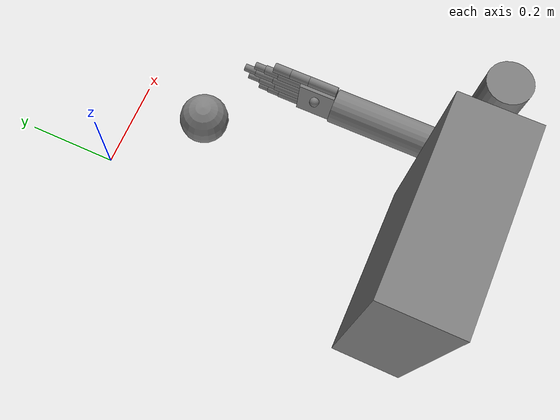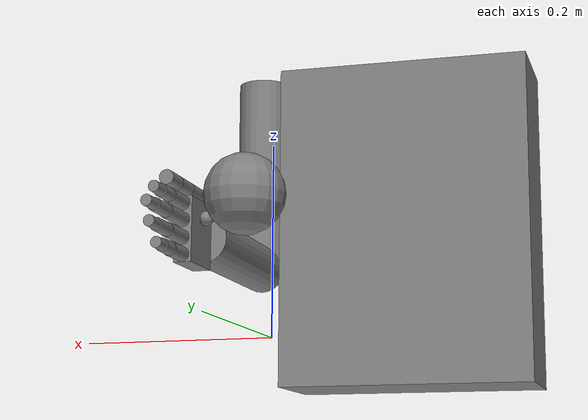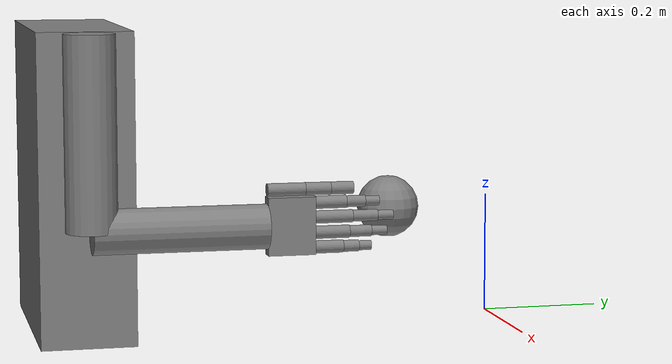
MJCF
<mujoco model="cosmo">
    <compiler angle="radian" inertiafromgeom="true"/>
    <option timestep="0.0002" iterations="50" apirate="50" gravity="0 0 -9.8"/>
    <size njmax="600" nconmax="150" nstack="300000"/>
    <default class="ALL">
      <geom contype="1" conaffinity="1" condim="3" margin="0.001"/>
      <joint limited="true" armature="0" solreflimit="0.0002 1" solimplimit="0.9 0.95 0.001"/>
    </default>
    <visual>
      <quality shadowsize="2048"/>
      <map fogstart="6" fogend="10"/>
      <headlight diffuse=".6 .6 .6" specular="0 0 0"/>
    </visual>
    <contact>
        <exclude body1="UPPERARM" body2="FOREARM"/>
        <exclude body1="FOREARM" body2="PALM"/>
        <exclude body1="PALM" body2="THUMB1"/>
        <exclude body1="PALM" body2="INDEX1"/>
        <exclude body1="PALM" body2="MIDDLE1"/>
        <exclude body1="PALM" body2="RING1"/>
        <exclude body1="PALM" body2="PINKY1"/>
        <exclude body1="THUMB1" body2="THUMB2"/>
        <exclude body1="INDEX1" body2="INDEX2"/>
        <exclude body1="MIDDLE1" body2="MIDDLE2"/>
        <exclude body1="RING1" body2="RING2"/>
        <exclude body1="PINKY1" body2="PINKY2"/>
        <exclude body1="THUMB2" body2="THUMB3"/>
        <exclude body1="INDEX2" body2="INDEX3"/>
        <exclude body1="MIDDLE2" body2="MIDDLE3"/>
        <exclude body1="RING2" body2="RING3"/>
        <exclude body1="PINKY2" body2="PINKY3"/>
        <!-- Start Exclude thumb from other fingers -->
        <exclude body1="THUMB1" body2="INDEX1"/>
        <exclude body1="THUMB1" body2="INDEX2"/>
        <exclude body1="THUMB1" body2="INDEX3"/>
        <exclude body1="THUMB2" body2="INDEX1"/>
        <exclude body1="THUMB2" body2="INDEX2"/>
        <exclude body1="THUMB2" body2="INDEX3"/>
        <exclude body1="THUMB3" body2="INDEX1"/>
        <exclude body1="THUMB3" body2="INDEX2"/>
        <exclude body1="THUMB3" body2="INDEX3"/>
        <exclude body1="THUMB1" body2="MIDDLE1"/>
        <exclude body1="THUMB1" body2="MIDDLE2"/>
        <exclude body1="THUMB1" body2="MIDDLE3"/>
        <exclude body1="THUMB2" body2="MIDDLE1"/>
        <exclude body1="THUMB2" body2="MIDDLE2"/>
        <exclude body1="THUMB2" body2="MIDDLE3"/>
        <exclude body1="THUMB3" body2="MIDDLE1"/>
        <exclude body1="THUMB3" body2="MIDDLE2"/>
        <exclude body1="THUMB3" body2="MIDDLE3"/>
        <exclude body1="THUMB1" body2="RING1"/>
        <exclude body1="THUMB1" body2="RING2"/>
        <exclude body1="THUMB1" body2="RING3"/>
        <exclude body1="THUMB2" body2="RING1"/>
        <exclude body1="THUMB2" body2="RING2"/>
        <exclude body1="THUMB2" body2="RING3"/>
        <exclude body1="THUMB3" body2="RING1"/>
        <exclude body1="THUMB3" body2="RING2"/>
        <exclude body1="THUMB3" body2="RING3"/>
        <exclude body1="THUMB1" body2="PINKY1"/>
        <exclude body1="THUMB1" body2="PINKY2"/>
        <exclude body1="THUMB1" body2="PINKY3"/>
        <exclude body1="THUMB2" body2="PINKY1"/>
        <exclude body1="THUMB2" body2="PINKY2"/>
        <exclude body1="THUMB2" body2="PINKY3"/>
        <exclude body1="THUMB3" body2="PINKY1"/>
        <exclude body1="THUMB3" body2="PINKY2"/>
        <exclude body1="THUMB3" body2="PINKY3"/>
        <!-- End Exclude thumb from other fingers -->
    </contact>
    <worldbody>
      <light directional="false" cutoff="35" exponent="10" diffuse=".7 .7 .7" pos="0.4 -0.2 1.5" dir="-0.4 0.2 -1.5" specular=".3 .3 .3"/>
      <camera name="fixed" pos="0 -0.7 0.7" zaxis="0 -1 1" fovy="45" ipd="0.068"/>
      <body childclass="ALL" name="T" pos="0 -0.7 0.25">
        <geom type="box" size="0.19 0.075 0.245" pos="0 0 0" mass= "38"/>
        <body name= "UPPERARM" pos="0.24 0 0.245">
          <geom type= "cylinder" fromto="0 0 0 0 0 -0.3" size="0.04" mass= "1.7"/>
          <joint name="T_UPPERARM_X" type="hinge" pos="0 0 0" axis="1 0 0" range="-3.14 3.14"/>
          <joint name="T_UPPERARM_Y" type="hinge" pos="0 0 0" axis="0 1 0" range="-3.14 3.14"/>
          <joint name="T_UPPERARM_Z" type="hinge" pos="0 0 0" axis="0 0 1" range="-3.14 3.14"/>
          <body name= "FOREARM" pos="0 0 -0.3" quat="0.7071 0.7071 0 0">
            <geom type= "cylinder" fromto="0 0 0 0 0 -0.27" size="0.035" mass= "1.3"/>
            <joint name= "UPPERARM_FOREARM" type="hinge" pos="0 0 0" axis="1 0 0" range="-1.5 1.5"/>
            <body name="PALM" pos="0 0 -0.3075" quat="0.7071 0 0 0.7071">
              <geom type="box" size="0.045 0.0125 0.0375" mass= "0.3148"/>
              <site name="palm_center" pos="0.02 0.02 0" size="0.01 0.01 0.01"/>
              <joint name="FOREARM_PALM_Z" type="hinge" pos="0 0 0.05" axis="0 0 1" range="-1.5708 1.5708" stiffness=".25" springref="0" damping="0.01"/>
              <joint name="FOREARM_PALM_Y" type="hinge" pos="0 0 0.05" axis="0 1 0" range="-0.5236 0.1745"/>
              <joint name="FOREARM_PALM_X" type="hinge" pos="0 0 0.05" axis="1 0 0" range="-1.2217 1.2217" stiffness=".5" springref="-.1571" damping="0.075"/>
              <!-- Fingers -->
              <!-- THUMB -->
              <body name= "THUMB1" pos="0.0565 0 0.0375" quat="0.7071 0 0 -0.7071">
                <geom type= "cylinder" fromto="0 0 0 0 0 -0.06" size="0.01" mass= "0.0650"/>
                <joint name="PALM_THUMB1_X" type="hinge" pos="0 0 0" axis="1 0 0" range="0 0.8727" stiffness=".5" springref=".646" damping="0.0142"/>
                <joint name="PALM_THUMB1_Y" type="hinge" pos="0 0 0" axis="0 1 0" range="0 0.8727" stiffness=".1" springref=".436" damping="0.0142"/>
                <body name= "THUMB2" pos="0 0 -0.06">
                  <geom type= "cylinder" fromto="0 0 0 0 0 -0.04" size="0.01" mass= "0.0193"/>
                  <joint name="THUMB1_THUMB2" type="hinge" pos="0 0 0" axis="1 0 0" range="-0.7854 0" stiffness=".1" springref="-.559" damping="0.0105"/>
                  <body name= "THUMB3" pos="0 0 -0.04">
                    <geom type= "cylinder" fromto="0 0 0 0 0 -0.036" size="0.01" mass= "0.0263"/>
                    <joint name="THUMB2_THUMB3" type="hinge" pos="0 0 0" axis="1 0 0" range="-1.5708 0" stiffness=".1" springref="-.279" damping="0.0081"/>
                  </body>
                </body>
              </body>
              <!-- INDEX -->
              <body name= "INDEX1" pos="0.035 0 -0.0375" quat="0.7071 0 0 -0.7071">
                <geom type= "cylinder" fromto="0 0 0 0 0 -0.05" size="0.01" mass= "0.0164"/>
                <joint name="PALM_INDEX1" type="hinge" pos="0 0 0" axis="0 1 0" range="0 1.5708" stiffness=".1" springref=".559" damping="0.0142"/>
                <body name= "INDEX2" pos="0 0 -0.05">
                  <geom type= "cylinder" fromto="0 0 0 0 0 -0.03" size="0.009" mass= "0.0168"/>
                  <joint name="INDEX1_INDEX2" type="hinge" pos="0 0 0" axis="0 1 0" range="0 2.0944" stiffness=".1" springref=".489" damping="0.0105"/>
                  <body name= "INDEX3" pos="0 0 -0.03">
                    <geom type= "cylinder" fromto="0 0 0 0 0 -0.0225" size="0.0075" mass= "0.0132"/>
                    <joint name="INDEX2_INDEX3" type="hinge" pos="0 0 0" axis="0 1 0" range="0 1.5708" stiffness=".1" springref=".384" damping="0.0081"/>
                  </body>
                </body>
              </body>
              <!-- MIDDLE -->
              <body name= "MIDDLE1" pos="0.012 0 -0.0375" quat="0.7071 0 0 -0.7071">
                <geom type= "cylinder" fromto="0 0 0 0 0 -0.06" size="0.01" mass= "0.0204"/>
                <joint name="PALM_MIDDLE1" type="hinge" pos="0 0 0" axis="0 1 0" range="0 1.5708" stiffness=".1" springref=".541" damping="0.0142"/>
                <body name= "MIDDLE2" pos="0 0 -0.06">
                  <geom type= "cylinder" fromto="0 0 0 0 0 -0.04" size="0.009" mass= "0.0168"/>
                  <joint name="MIDDLE1_MIDDLE2" type="hinge" pos="0 0 0" axis="0 1 0" range="0 2.0944" stiffness=".1" springref=".960" damping="0.0105"/>
                  <body name= "MIDDLE3" pos="0 0 -0.04">
                    <geom type= "cylinder" fromto="0 0 0 0 0 -0.025" size="0.0075" mass= "0.0120"/>
                    <joint name="MIDDLE2_MIDDLE3" type="hinge" pos="0 0 0" axis="0 1 0" range="0 1.5708" stiffness=".1" springref=".524" damping="0.0081"/>
                  </body>
                </body>
              </body>
              <!-- RING -->
              <body name= "RING1" pos="-0.012 0 -0.0375" quat="0.7071 0 0 -0.7071">
                <geom type= "cylinder" fromto="0 0 0 0 0 -0.055" size="0.01" mass= "0.0144"/>
                <joint name="PALM_RING1" type="hinge" pos="0 0 0" axis="0 1 0" range="0 1.5708" stiffness=".1" springref=".646" damping="0.0142"/>
                <body name= "RING2" pos="0 0 -0.055">
                  <geom type= "cylinder" fromto="0 0 0 0 0 -0.035" size="0.009" mass= "0.0109"/>
                  <joint name="RING1_RING2" type="hinge" pos="0 0 0" axis="0 1 0" range="0 2.0944" stiffness=".1" springref=".943" damping="0.0105"/>
                  <body name= "RING3" pos="0 0 -0.035">
                    <geom type= "cylinder" fromto="0 0 0 0 0 -0.025" size="0.0075" mass= "0.0094"/>
                    <joint name="RING2_RING3" type="hinge" pos="0 0 0" axis="0 1 0" range="0 1.5708" stiffness=".1" springref=".437" damping="0.0081"/>
                  </body>
                </body>
              </body>
              <!-- PINKY -->
              <body name= "PINKY1" pos="-0.035 0 -0.0375" quat="0.7071 0 0 -0.7071">
                <geom type= "cylinder" fromto="0 0 0 0 0 -0.045" size="0.01" mass= "0.0122"/>
                <joint name="PALM_PINKY1" type="hinge" pos="0 0 0" axis="0 1 0" range="0 1.5708" stiffness=".1" springref=".855" damping="0.0142"/>
                <body name= "PINKY2" pos="0 0 -0.045">
                  <geom type= "cylinder" fromto="0 0 0 0 0 -0.025" size="0.009" mass= "0.0074"/>
                  <joint name="PINKY1_PINKY2" type="hinge" pos="0 0 0" axis="0 1 0" range="0 2.0944" stiffness=".1" springref=".541" damping="0.0105"/>
                  <body name= "PINKY3" pos="0 0 -0.025">
                   <geom type= "cylinder" fromto="0 0 0 0 0 -0.02" size="0.0075" mass= "0.0068"/>
                   <joint name="PINKY2_PINKY3" type="hinge" pos="0 0 0" axis="0 1 0" range="0 1.5708" stiffness=".1" springref=".367" damping="0.0081"/>
                  </body>
                </body>
              </body>
            </body>
          </body>
        </body>
      </body>
      <body name="TARGET" pos="0.1 -0.2 0.2"> <!--pos="0.2 -0.2 0.25">-->
        <geom type="sphere" size="0.05" contype="1" conaffinity="1" condim="3" margin="0.001"/>
      </body>
    </worldbody>
    <actuator>
      <motor joint="T_UPPERARM_X" ctrlrange="-100.0 100.0" ctrllimited="true"/>
      <motor joint="T_UPPERARM_Y" ctrlrange="-100.0 100.0" ctrllimited="true"/>
      <motor joint="T_UPPERARM_Z" ctrlrange="-100.0 100.0" ctrllimited="true"/>
      <motor joint="UPPERARM_FOREARM" ctrlrange="-100.0 100.0" ctrllimited="true"/>
      <motor joint="FOREARM_PALM_X" ctrlrange="-100.0 100.0" ctrllimited="true"/>
      <motor joint="FOREARM_PALM_Y" ctrlrange="-100.0 100.0" ctrllimited="true"/>
      <motor joint="FOREARM_PALM_Z" ctrlrange="-100.0 100.0" ctrllimited="true"/>
      <motor joint="PALM_THUMB1_X" ctrlrange="-100.0 100.0" ctrllimited="true"/>
      <motor joint="PALM_THUMB1_Y" ctrlrange="-100.0 100.0" ctrllimited="true"/>
      <motor joint="THUMB1_THUMB2" ctrlrange="-100.0 100.0" ctrllimited="true"/>
      <motor joint="THUMB2_THUMB3" ctrlrange="-100.0 100.0" ctrllimited="true"/>
      <motor joint="PALM_INDEX1" ctrlrange="-100.0 100.0" ctrllimited="true"/>
      <motor joint="INDEX1_INDEX2" ctrlrange="-100.0 100.0" ctrllimited="true"/>
      <motor joint="INDEX2_INDEX3" ctrlrange="-100.0 100.0" ctrllimited="true"/>
      <motor joint="PALM_MIDDLE1" ctrlrange="-100.0 100.0" ctrllimited="true"/>
      <motor joint="MIDDLE1_MIDDLE2" ctrlrange="-100.0 100.0" ctrllimited="true"/>
      <motor joint="MIDDLE2_MIDDLE3" ctrlrange="-100.0 100.0" ctrllimited="true"/>
      <motor joint="PALM_RING1" ctrlrange="-100.0 100.0" ctrllimited="true"/>
      <motor joint="RING1_RING2" ctrlrange="-100.0 100.0" ctrllimited="true"/>
      <motor joint="RING2_RING3" ctrlrange="-100.0 100.0" ctrllimited="true"/>
      <motor joint="PALM_PINKY1" ctrlrange="-100.0 100.0" ctrllimited="true"/>
      <motor joint="PINKY1_PINKY2" ctrlrange="-100.0 100.0" ctrllimited="true"/>
      <motor joint="PINKY2_PINKY3" ctrlrange="-100.0 100.0" ctrllimited="true"/>
    </actuator>
</mujoco>
